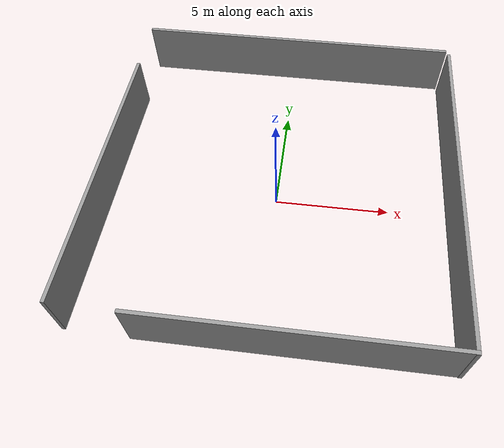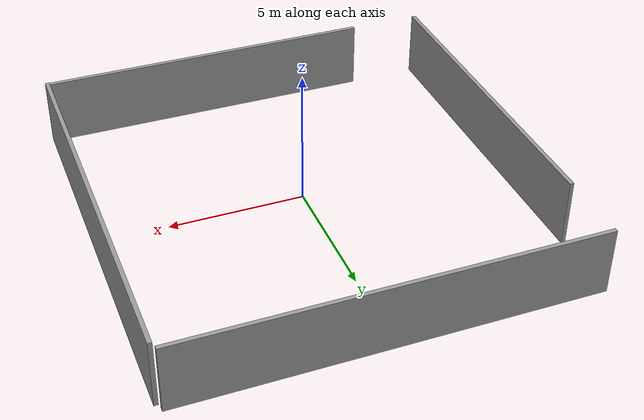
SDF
<?xml version='1.0'?>
<sdf version='1.6'>
  <model name='World1'>
    <pose frame=''>0.086913 0.702046 0 0 -0 0</pose>
    <link name='Wall_1'>
      <collision name='Wall_1_Collision'>
        <geometry>
          <box>
            <size>12.5 0.15 2.5</size>
          </box>
        </geometry>
        <pose frame=''>0 0 1.25 0 -0 0</pose>
      </collision>
      <visual name='Wall_1_Visual'>
        <pose frame=''>0 0 1.25 0 -0 0</pose>
        <geometry>
          <box>
            <size>12.5 0.15 2.5</size>
          </box>
        </geometry>
        <material>
          <script>
            <uri>file://media/materials/scripts/gazebo.material</uri>
            <name>Gazebo/Grey</name>
          </script>
          <ambient>1 1 1 1</ambient>
        </material>
        <meta>
          <layer>0</layer>
        </meta>
      </visual>
      <pose frame=''>1.3637 -7.55747 0 0 -0 0</pose>
    </link>
    <link name='Wall_12'>
      <collision name='Wall_12_Collision'>
        <geometry>
          <box>
            <size>15 0.15 2.5</size>
          </box>
        </geometry>
        <pose frame=''>0 0 1.25 0 -0 0</pose>
      </collision>
      <visual name='Wall_12_Visual'>
        <pose frame=''>0 0 1.25 0 -0 0</pose>
        <geometry>
          <box>
            <size>15 0.15 2.5</size>
          </box>
        </geometry>
        <material>
          <script>
            <uri>file://media/materials/scripts/gazebo.material</uri>
            <name>Gazebo/Grey</name>
          </script>
          <ambient>1 1 1 1</ambient>
        </material>
        <meta>
          <layer>0</layer>
        </meta>
      </visual>
      <pose frame=''>-0.065797 7.5777 0 0 -0 0</pose>
    </link>
    <link name='Wall_3'>
      <collision name='Wall_3_Collision'>
        <geometry>
          <box>
            <size>12.5 0.15 2.5</size>
          </box>
        </geometry>
        <pose frame=''>0 0 1.25 0 -0 0</pose>
      </collision>
      <visual name='Wall_3_Visual'>
        <pose frame=''>0 0 1.25 0 -0 0</pose>
        <geometry>
          <box>
            <size>12.5 0.15 2.5</size>
          </box>
        </geometry>
        <material>
          <script>
            <uri>file://media/materials/scripts/gazebo.material</uri>
            <name>Gazebo/Grey</name>
          </script>
          <ambient>1 1 1 1</ambient>
        </material>
        <meta>
          <layer>0</layer>
        </meta>
      </visual>
      <pose frame=''>1.3637 -7.55747 0 0 -0 0</pose>
    </link>
    <link name='Wall_5'>
      <collision name='Wall_5_Collision'>
        <geometry>
          <box>
            <size>12.5 0.15 2.5</size>
          </box>
        </geometry>
        <pose frame=''>0 0 1.25 0 -0 0</pose>
      </collision>
      <visual name='Wall_5_Visual'>
        <pose frame=''>0 0 1.25 0 -0 0</pose>
        <geometry>
          <box>
            <size>12.5 0.15 2.5</size>
          </box>
        </geometry>
        <material>
          <script>
            <uri>file://media/materials/scripts/gazebo.material</uri>
            <name>Gazebo/Grey</name>
          </script>
          <ambient>1 1 1 1</ambient>
        </material>
        <meta>
          <layer>0</layer>
        </meta>
      </visual>
      <pose frame=''>-7.53869 -1.31418 0 0 -0 -1.5708</pose>
    </link>
    <link name='Wall_7'>
      <collision name='Wall_7_Collision'>
        <geometry>
          <box>
            <size>15 0.15 2.5</size>
          </box>
        </geometry>
        <pose frame=''>0 0 1.25 0 -0 0</pose>
      </collision>
      <visual name='Wall_7_Visual'>
        <pose frame=''>0 0 1.25 0 -0 0</pose>
        <geometry>
          <box>
            <size>15 0.15 2.5</size>
          </box>
        </geometry>
        <material>
          <script>
            <uri>file://media/materials/scripts/gazebo.material</uri>
            <name>Gazebo/Grey</name>
          </script>
          <ambient>1 1 1 1</ambient>
        </material>
        <meta>
          <layer>0</layer>
        </meta>
      </visual>
      <pose frame=''>7.53869 -0.152702 0 0 -0 1.5708</pose>
    </link>
    <static>1</static>
  </model>
</sdf>
